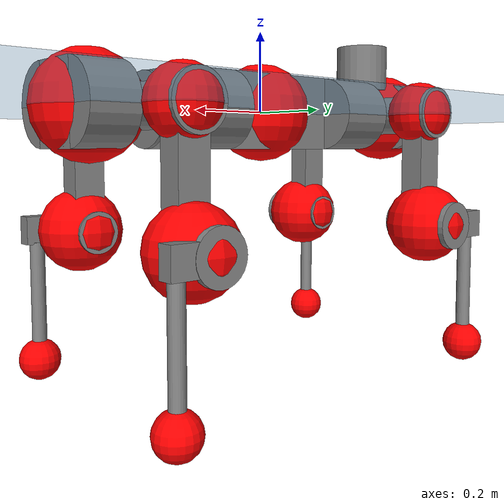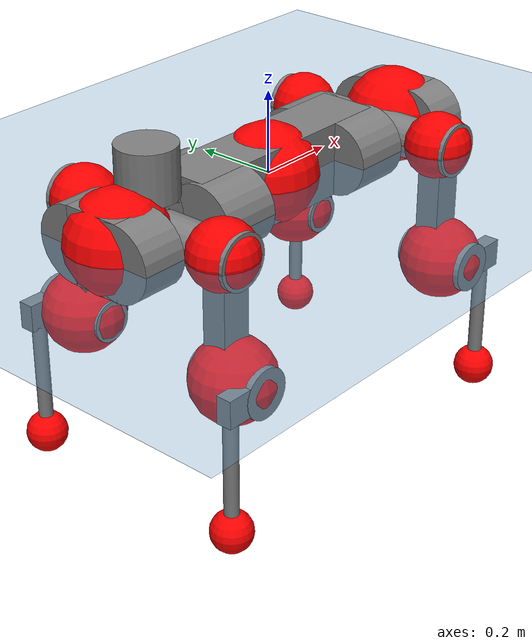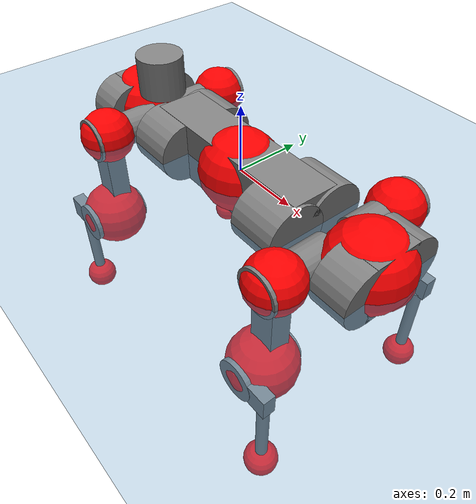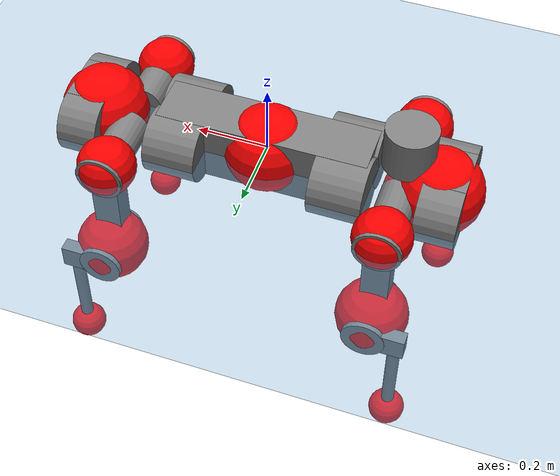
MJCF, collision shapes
<mujoco model="anymal_c">
  <compiler angle="radian" assetdir="assets" balanceinertia="true" inertiafromgeom="false"/>

  <option timestep="0.005" density="1.2" viscosity="2e-05"/>

  <size nkey="1"/>

  <visual>
    <quality shadowsize="8192"/>
    <map shadowclip="0.5"/>
  </visual>

  <default>
    <default class="/">
      <material specular="0" shininess="0.25"/>
      <geom contype="0" conaffinity="0" group="1" solref="-1000 -80"/>
      <site size="0.01 0.005 0.005" group="5"/>
      <general forcelimited="true" forcerange="-80 80" biastype="affine" gainprm="80" biasprm="0 -80 -2"/>
      <default class="anymal_c">
        <joint armature="0.01" damping="0.01" frictionloss="0.1"/>
        <default class="visual">
          <geom type="mesh" group="2"/>
          <default class="visual_zflip"/>
        </default>
        <default class="collision">
          <geom type="cylinder" group="3"/>
          <default class="foot">
            <geom size="0.03 0 0" type="sphere" condim="6" priority="1" friction="0.8 0.02 0.01" solimp="0.015 1 0.03"/>
          </default>
        </default>
      </default>
      <default class="reward_collision_sphere">
        <geom group="5" rgba="1 0 0 1"/>
      </default>
    </default>
  </default>

  <asset>
    <texture type="skybox" colorspace="auto" name="//unnamed_texture_0" builtin="gradient" rgb1="0.95 0.95 0.95" rgb2="0.95 0.95 0.95" width="100" height="600"/>
    <texture type="2d" colorspace="auto" name="texplane" builtin="checker" rgb1="0.345 0.575 0.748" rgb2="0.345 0.575 0.748" markrgb="1 1 1" width="512" height="512"/>
    <texture type="2d" colorspace="linear" name="base" file="base.png"/>
    <texture type="2d" colorspace="linear" name="top_shell" file="top_shell.png"/>
    <texture type="2d" colorspace="linear" name="bottom_shell" file="bottom_shell.png"/>
    <texture type="2d" colorspace="linear" name="remote" file="remote.png"/>
    <texture type="2d" colorspace="linear" name="hatch" file="hatch.png"/>
    <texture type="2d" colorspace="linear" name="handle" file="handle.png"/>
    <texture type="2d" colorspace="linear" name="face" file="face.png"/>
    <texture type="2d" colorspace="linear" name="battery" file="battery.png"/>
    <texture type="2d" colorspace="linear" name="lidar_cage" file="lidar_cage.png"/>
    <texture type="2d" colorspace="linear" name="depth_camera" file="depth_camera.png"/>
    <texture type="2d" colorspace="linear" name="wide_angle_camera" file="wide_angle_camera.png"/>
    <texture type="2d" colorspace="linear" name="lidar" file="lidar.png"/>
    <texture type="2d" colorspace="linear" name="drive" file="drive.png"/>
    <texture type="2d" colorspace="linear" name="hip_l" file="hip_l.png"/>
    <texture type="2d" colorspace="linear" name="shank_l" file="shank_l.png"/>
    <texture type="2d" colorspace="linear" name="foot" file="foot.png"/>
    <texture type="2d" colorspace="linear" name="thigh" file="thigh.png"/>
    <texture type="2d" colorspace="linear" name="shank_r" file="shank_r.png"/>
    <texture type="2d" colorspace="linear" name="hip_r" file="hip_r.png"/>
    <material name="MatPlane" class="/" texture="texplane" texuniform="true" texrepeat="2 2" specular="0.9" shininess="0.5"/>
    <material name="black_plastic" class="/" rgba="0.007 0.007 0.007 1"/>
    <material name="green" class="/" rgba="0.052 0.178 0.033 1"/>
    <material name="red" class="/" rgba="0.178 0.006 0.005 1"/>
    <material name="yellow" class="/" rgba="0.178 0.119 0.006 1"/>
    <material name="lwl" class="/" rgba="0.8 0.8 0.8 1"/>
    <material name="base" class="/" texture="base"/>
    <material name="top_shell" class="/" texture="top_shell"/>
    <material name="bottom_shell" class="/" texture="bottom_shell"/>
    <material name="hip_l" class="/" texture="hip_l"/>
    <material name="thigh" class="/" texture="thigh"/>
    <material name="shank_l" class="/" texture="shank_l"/>
    <material name="foot" class="/" texture="foot"/>
    <material name="hip_r" class="/" texture="hip_r"/>
    <material name="shank" class="/" texture="shank_r"/>
    <material name="hatch" class="/" texture="hatch"/>
    <material name="remote" class="/" texture="remote"/>
    <material name="handle" class="/" texture="handle"/>
    <material name="face" class="/" texture="face"/>
    <material name="depth_camera" class="/" texture="depth_camera"/>
    <material name="wide_angle_camera" class="/" texture="wide_angle_camera"/>
    <material name="battery" class="/" texture="battery"/>
    <material name="lidar_cage" class="/" texture="lidar_cage"/>
    <material name="lidar" class="/" texture="lidar"/>
    <material name="drive" class="/" texture="drive"/>
    <mesh name="base_0" class="/" file="base_0.obj"/>
    <mesh name="base_1" class="/" file="base_1.obj"/>
    <mesh name="base_2" class="/" file="base_2.obj"/>
    <mesh name="base_3" class="/" file="base_3.obj"/>
    <mesh name="base_4" class="/" file="base_4.obj"/>
    <mesh name="base_5" class="/" file="base_5.obj"/>
    <mesh name="top_shell" class="/" file="top_shell.obj"/>
    <mesh name="bottom_shell" class="/" file="bottom_shell.obj"/>
    <mesh name="remote" class="/" file="remote.obj"/>
    <mesh name="handle" class="/" file="handle.obj"/>
    <mesh name="face" class="/" file="face.obj"/>
    <mesh name="wide_angle_camera" class="/" file="wide_angle_camera.obj"/>
    <mesh name="depth_camera" class="/" file="depth_camera.obj"/>
    <mesh name="battery" class="/" file="battery.obj"/>
    <mesh name="lidar_cage" class="/" file="lidar_cage.obj"/>
    <mesh name="lidar" class="/" file="lidar.obj"/>
    <mesh name="drive" class="/" file="drive.obj"/>
    <mesh name="hip_l" class="/" file="hip_l.obj"/>
    <mesh name="thigh" class="/" file="thigh.obj"/>
    <mesh name="shank_l" class="/" file="shank_l.obj"/>
    <mesh name="foot" class="/" file="foot.obj"/>
    <mesh name="hip_r" class="/" file="hip_r.obj"/>
    <mesh name="hatch" class="/" file="hatch.obj"/>
    <mesh name="shank_r" class="/" file="shank_r.obj"/>
  </asset>

  <worldbody>
    <geom name="floor" class="/" size="100 100 0.125" type="plane" group="0" material="MatPlane"/>
    <light name="toplight_shadow" class="/" pos="0 0 5" dir="0.0990148 0.0990148 -0.990148" type="directional" ambient="0.04 0.04 0.04" diffuse="0.55 0.55 0.55" specular="0.12 0.12 0.12"/>
    <light name="toplight_fill" class="/" pos="0 0 5" dir="0.0990148 0.0990148 -0.990148" type="directional" castshadow="false" ambient="0.04 0.04 0.04" diffuse="0.3 0.3 0.3" specular="0.08 0.08 0.08"/>
    <body name="trunk" childclass="anymal_c" pos="-0.00127742 0.000478966 0.000728228" quat="1 -1.08209e-06 -6.4606e-05 -4.89702e-05">
      <inertial pos="0.000834394 -0.000465255 0.0496876" quat="0.497249 0.501623 0.500013 0.501102" mass="19.8758" diaginertia="0.854634 0.497447 0.243287"/>
      <joint name="//unnamed_joint_0" type="free" armature="0" damping="0" frictionloss="0"/>
      <geom name="//unnamed_geom_1" class="visual" material="green" mesh="base_0"/>
      <geom name="//unnamed_geom_2" class="visual" material="yellow" mesh="base_1"/>
      <geom name="//unnamed_geom_3" class="visual" material="red" mesh="base_2"/>
      <geom name="//unnamed_geom_4" class="visual" material="black_plastic" mesh="base_3"/>
      <geom name="//unnamed_geom_5" class="visual" material="lwl" mesh="base_4"/>
      <geom name="//unnamed_geom_6" class="visual" material="base" mesh="base_5"/>
      <geom name="trunk_1" class="collision" size="0.29326 0.070787 0.0910119" type="box"/>
      <geom name="trunk_2" class="collision" size="0.0910119 0.0733151" pos="0.23021 0.0668405 0" quat="0.707107 0 0.707107 0"/>
      <geom name="trunk_3" class="collision" size="0.0910119 0.0733151" pos="-0.23021 0.0668405 0" quat="0.707107 0 0.707107 0"/>
      <geom name="trunk_4" class="collision" size="0.0910119 0.0733151" pos="0.23021 -0.0668405 0" quat="0.707107 0 0.707107 0"/>
      <geom name="trunk_5" class="collision" size="0.0910119 0.0733151" pos="-0.23021 -0.0668405 0" quat="0.707107 0 0.707107 0"/>
      <geom name="//unnamed_geom_12" class="visual" material="top_shell" mesh="top_shell"/>
      <geom name="//unnamed_geom_13" class="visual" material="bottom_shell" mesh="bottom_shell"/>
      <geom name="//unnamed_geom_14" class="visual" material="remote" mesh="remote"/>
      <geom name="//unnamed_geom_15" class="visual" material="handle" mesh="handle"/>
      <geom name="//unnamed_geom_16" class="visual" pos="0.438722 0 0" quat="1 0 0 0" material="face" mesh="face"/>
      <geom name="trunk_6" class="collision" size="0.0556184 0.070787 0.0910119" pos="0.496936 0 0" type="box"/>
      <geom name="//unnamed_geom_18" class="collision" size="0.0910119 0.0556184" pos="0.496936 0.0668405 0" quat="0.707107 0 0.707107 0"/>
      <geom name="//unnamed_geom_19" class="collision" size="0.0910119 0.0556184" pos="0.496936 -0.0668405 0" quat="0.707107 0 0.707107 0"/>
      <geom name="//unnamed_geom_20" class="visual" pos="0.488626 0 -0.0295076" quat="0.965926 0 0.258819 0" material="depth_camera" mesh="depth_camera"/>
      <geom name="//unnamed_geom_21" class="visual" pos="0.542978 0 0.0152758" material="wide_angle_camera" mesh="wide_angle_camera"/>
      <geom name="//unnamed_geom_22" class="visual_zflip" pos="-0.438722 0 0" quat="0 0 0 1" material="face" mesh="face"/>
      <geom name="trunk_7" class="collision" size="0.0556184 0.070787 0.0910119" pos="-0.496936 0 0" quat="0 0 0 1" type="box"/>
      <geom name="//unnamed_geom_24" class="collision" size="0.0910119 0.0556184" pos="-0.496936 -0.0668405 0" quat="0 -0.707107 0 0.707107"/>
      <geom name="//unnamed_geom_25" class="collision" size="0.0910119 0.0556184" pos="-0.496936 0.0668405 0" quat="0 -0.707107 0 0.707107"/>
      <geom name="//unnamed_geom_26" class="visual" pos="-0.488626 0 -0.0295076" quat="0 -0.258819 0 0.965926" material="depth_camera" mesh="depth_camera"/>
      <geom name="//unnamed_geom_27" class="visual_zflip" pos="-0.542978 0 0.0152758" quat="0 0 0 1" material="wide_angle_camera" mesh="wide_angle_camera"/>
      <geom name="//unnamed_geom_28" class="visual" material="battery" mesh="battery"/>
      <geom name="//unnamed_geom_29" class="visual" pos="0 0.0716482 0.0299323" quat="0.683013 -0.183013 0.183013 0.683013" material="depth_camera" mesh="depth_camera"/>
      <geom name="//unnamed_geom_30" class="visual" pos="0 -0.0716482 0.0299323" quat="0.683013 0.183013 0.183013 -0.683013" material="depth_camera" mesh="depth_camera"/>
      <geom name="//unnamed_geom_31" class="visual" pos="-0.385271 0 0.0750015" quat="1 0 0 0" material="lidar_cage" mesh="lidar_cage"/>
      <geom name="trunk_8" class="collision" size="0.070787 0.0606746" pos="-0.385271 0 0.136227"/>
      <geom name="//unnamed_geom_33" class="visual" pos="-0.385271 -4.06912e-05 0.145105" quat="0.707107 0 0 -0.707107" material="lidar" mesh="lidar"/>
      <geom name="//unnamed_geom_34" class="visual" pos="0.317425 0.0993291 -1.13099e-09" quat="0.258819 0.965926 0 0" material="drive" mesh="drive"/>
      <geom name="//unnamed_geom_35" class="visual" pos="0.317425 -0.0993291 1.13099e-09" quat="0.258819 -0.965926 0 0" material="drive" mesh="drive"/>
      <geom name="//unnamed_geom_36" class="visual" pos="-0.317425 0.0993291 1.13099e-09" quat="0 0 0.965926 -0.258819" material="drive" mesh="drive"/>
      <geom name="//unnamed_geom_37" class="visual" pos="-0.317425 -0.0993291 -1.13099e-09" quat="0 0 -0.965926 -0.258819" material="drive" mesh="drive"/>
      <geom name="//unnamed_geom_38" class="visual" pos="0.122779 0 0.0744913" quat="1 0 0 0" material="hatch" mesh="hatch"/>
      <geom name="//unnamed_geom_39" class="reward_collision_sphere" size="0.121349"/>
      <geom name="//unnamed_geom_40" class="reward_collision_sphere" size="0.121349" pos="0.476297 0 0"/>
      <geom name="//unnamed_geom_41" class="reward_collision_sphere" size="0.121349" pos="-0.476297 0 0"/>
      <site name="imu" pos="0.261965 0.004994 0.0473116" size="0.0101124"/>
      <camera name="track" pos="0 -1.90973 0" quat="0.707107 0.707107 0 0" mode="trackcom"/>
      <camera name="ego_camera" pos="0.476297 0 -0.0408171" quat="-0.5 -0.5 0.5 0.5"/>
      <body name="LF_HIP" pos="0.318668 0.100512 -0.00142577" quat="0.259123 0.965844 -0.000308365 0.000523978">
        <inertial pos="0.0584742 -0.0133664 -0.00739755" quat="-0.128315 0.710228 -0.136191 0.678648" mass="2.88011" diaginertia="0.00778635 0.00388243 0.0036239"/>
        <joint name="LF_HAA" pos="0 0 0" axis="0.999993 0.0034764 0.00126367" range="-0.71617 0.477723" armature="0.0100635" damping="0.0137732" frictionloss="0.0968824"/>
        <geom name="//unnamed_geom_42" class="visual" pos="0 -6.65312e-05 1.09277e-05" quat="0.258819 -0.965926 0 0" material="hip_l" mesh="hip_l"/>
        <geom name="//unnamed_geom_43" class="visual" pos="0.0634004 -0.0754826 -0.0440649" quat="0.183013 -0.683013 0.683013 0.183013" material="drive" mesh="drive"/>
        <geom name="//unnamed_geom_44" class="collision" size="0.0505621 0.070787" pos="0.0634004 -0.01142 -0.00704606" quat="-0.353553 -0.612372 0.612372 -0.353553"/>
        <body name="LF_THIGH" pos="0.0632162 -0.0694143 -0.0429094" quat="0.18307 -0.683011 0.682988 0.183055">
          <inertial pos="0.0341488 -0.000157756 -0.249876" quat="0.993107 -0.00515375 -0.0811051 0.0844581" mass="3.17799" diaginertia="0.0402135 0.0237939 0.00468153"/>
          <joint name="LF_HFE" pos="0 0 0" axis="0.999993 -0.00227686 -0.00284039" stiffness="0.00908946" range="-3.14963 3.13478" armature="0.00998956" damping="0.000686505" frictionloss="0.0962579"/>
          <geom name="//unnamed_geom_45" class="visual" pos="0.0020607 3.24719e-06 0" quat="0.707107 0 0 -0.707107" material="thigh" mesh="thigh"/>
          <geom name="//unnamed_geom_46" class="collision" size="0.0657308 0.0404497" pos="0.0423375 0 0" quat="0.5 0.5 -0.5 -0.5"/>
          <geom name="//unnamed_geom_47" class="collision" size="0.0379216 0.0303373 0.142903" pos="0.0317531 0 -0.144201" quat="0.707107 0 0 -0.707107" type="box"/>
          <geom name="//unnamed_geom_48" class="visual" pos="0.106161 0 -0.290822" quat="1 0 0 0" material="drive" mesh="drive"/>
          <geom name="//unnamed_geom_49" class="collision" size="0.0505621 0.070787" pos="0.0320706 0 -0.290822" quat="0.707107 0 0.707107 0"/>
          <geom name="//unnamed_geom_50" class="reward_collision_sphere" size="0.0808994" pos="0.0264609 0 0"/>
          <body name="LF_SHANK" pos="0.10656 -7.06056e-05 -0.291513" quat="1 0.000321007 -0.000255001 1.58486e-05">
            <inertial pos="0.00490527 -0.0594175 -0.0821233" quat="0.993104 -0.113953 -0.00283219 -0.0274145" mass="0.608367" diaginertia="0.0135765 0.00725015 0.00124943"/>
            <joint name="LF_KFE" pos="0 0 0" axis="0.999998 -0.00190939 -6.67305e-05" range="-3.14147 3.13161" armature="0.0106569" damping="0.00958314" frictionloss="0.0986515"/>
            <geom name="//unnamed_geom_51" class="visual" pos="0.00067195 0.00358287 0" quat="0.707107 0 0 -0.707107" material="shank_l" mesh="shank_l"/>
            <geom name="LF_kfe_act" class="collision" size="0.0606746 0.0202249" pos="0.0211687 0 0" quat="0.5 0.5 -0.5 -0.5"/>
            <geom name="//unnamed_geom_53" class="collision" size="0.0581455 0.0341294 0.0192136" pos="0.0211687 -0.0549037 0" quat="0.5 0.5 -0.5 -0.5" type="box"/>
            <geom name="//unnamed_geom_54" class="visual" pos="0.0138124 -0.0828256 -0.344874" quat="0.382683 0 0 -0.92388" material="foot" mesh="foot"/>
            <geom name="LF_calf" class="collision" size="0.0176968 0.14284" pos="0.0138126 -0.0839803 -0.172437" quat="0.707107 0 0 -0.707107"/>
            <geom name="LF_foot" class="foot" size="0.0289279" pos="0.0138126 -0.0839803 -0.321914" quat="0.707107 0 0 -0.707107"/>
            <geom name="//unnamed_geom_57" class="reward_collision_sphere" size="0.101124" pos="-0.0529219 0 0"/>
            <geom name="//unnamed_geom_58" class="reward_collision_sphere" size="0.0505621" pos="0.0138126 -0.0839803 -0.321914"/>
            <site name="LF_foot" class="foot" pos="0.0138126 -0.0839803 -0.321914" quat="0.707107 0 0 -0.707107" size="0.0101124"/>
          </body>
        </body>
      </body>
      <body name="RF_HIP" pos="0.317949 -0.0992272 7.7362e-05" quat="0.258736 -0.965948 -2.26383e-05 0.000328678">
        <inertial pos="0.0602174 0.0146678 -0.00851425" quat="0.136202 0.679601 0.12867 0.70925" mass="2.92558" diaginertia="0.0076826 0.00386322 0.00365156"/>
        <joint name="RF_HAA" pos="0 0 0" axis="0.999999 -0.000294109 0.00114633" range="-0.511573 0.718877" armature="0.00937811" damping="0.0100112" frictionloss="0.107952"/>
        <geom name="//unnamed_geom_59" class="visual" pos="0 6.65307e-05 1.09277e-05" quat="0.258819 0.965926 0 0" material="hip_r" mesh="hip_r"/>
        <geom name="//unnamed_geom_60" class="visual" pos="0.0634004 0.0754826 -0.0440649" quat="0.183013 0.683013 0.683013 -0.183013" material="drive" mesh="drive"/>
        <geom name="//unnamed_geom_61" class="collision" size="0.0505621 0.070787" pos="0.0634004 0.01142 -0.00704606" quat="-0.353553 0.612372 0.612372 0.353553"/>
        <body name="RF_THIGH" pos="0.0642651 0.0691725 -0.0428775" quat="0.182675 0.683201 0.682878 -0.18315">
          <inertial pos="0.0330972 -0.00158315 -0.250418" quat="0.992888 -0.00656893 -0.0787613 0.0890321" mass="3.13317" diaginertia="0.0405885 0.0241675 0.00465712"/>
          <joint name="RF_HFE" pos="0 0 0" axis="0.999989 -0.000130905 0.0046087" stiffness="0.00455017" range="-3.13691 3.14977" armature="0.0101118" damping="0.00939606" frictionloss="0.0968158"/>
          <geom name="//unnamed_geom_62" class="visual" pos="0.0020607 3.24719e-06 0" quat="0.707107 0 0 -0.707107" material="thigh" mesh="thigh"/>
          <geom name="//unnamed_geom_63" class="collision" size="0.0657308 0.0404497" pos="0.0423375 0 0" quat="0.5 0.5 0.5 0.5"/>
          <geom name="//unnamed_geom_64" class="collision" size="0.0379216 0.0303373 0.142903" pos="0.0317531 0 -0.144201" quat="0.707107 0 0 0.707107" type="box"/>
          <geom name="//unnamed_geom_65" class="visual" pos="0.106161 0 -0.290822" quat="1 0 0 0" material="drive" mesh="drive"/>
          <geom name="//unnamed_geom_66" class="collision" size="0.0505621 0.070787" pos="0.0320706 0 -0.290822" quat="0.707107 0 0.707107 0"/>
          <geom name="//unnamed_geom_67" class="reward_collision_sphere" size="0.0808994" pos="0.0264609 0 0"/>
          <body name="RF_SHANK" pos="0.105143 0.000137364 -0.29104" quat="1 1.78906e-05 3.7821e-05 1.42599e-05">
            <inertial pos="0.00499019 0.0586102 -0.0821455" quat="0.9931 0.114199 0.00021347 0.0266596" mass="0.610624" diaginertia="0.0136207 0.00738995 0.00123741"/>
            <joint name="RF_KFE" pos="0 0 0" axis="0.999986 0.00136849 0.00512557" range="-3.14125 3.13031" armature="0.0100552" damping="0.00423999" frictionloss="0.101789"/>
            <geom name="//unnamed_geom_68" class="visual" pos="0.000671947 -0.00358287 0" quat="0.707107 0 0 0.707107" material="shank" mesh="shank_r"/>
            <geom name="RF_kfe_act" class="collision" size="0.0606746 0.0202249" pos="0.0211687 0 0" quat="0.5 0.5 0.5 0.5"/>
            <geom name="//unnamed_geom_70" class="collision" size="0.0581455 0.0341294 0.0192136" pos="0.0211687 0.0549037 0" quat="0.5 0.5 0.5 0.5" type="box"/>
            <geom name="//unnamed_geom_71" class="visual" pos="0.0138128 0.0828256 -0.344874" quat="0.382683 0 0 0.92388" material="foot" mesh="foot"/>
            <geom name="RF_calf" class="collision" size="0.0176968 0.14284" pos="0.0138126 0.0839803 -0.172437" quat="0.707107 0 0 0.707107"/>
            <geom name="RF_foot" class="foot" size="0.030018" pos="0.0138126 0.0839803 -0.321914" quat="0.707107 0 0 0.707107"/>
            <geom name="//unnamed_geom_74" class="reward_collision_sphere" size="0.101124" pos="-0.0529219 0 0"/>
            <geom name="//unnamed_geom_75" class="reward_collision_sphere" size="0.0505621" pos="0.0138126 0.0839803 -0.321914"/>
            <site name="RF_foot" class="foot" pos="0.0138126 0.0839803 -0.321914" quat="0.707107 0 0 0.707107" size="0.0101124"/>
          </body>
        </body>
      </body>
      <body name="LH_HIP" pos="-0.317381 0.0995297 -0.000249762" quat="-0.00065655 -0.000698105 0.966002 -0.258532">
        <inertial pos="0.0614456 0.0141122 -0.00834237" quat="0.135273 0.678862 0.128041 0.710249" mass="2.87596" diaginertia="0.00776155 0.00387651 0.0036231"/>
        <joint name="LH_HAA" pos="0 0 0" axis="0.999999 -0.00072776 0.0010813" range="-0.502934 0.732708" armature="0.0100328" damping="0.0102063" frictionloss="0.0976572"/>
        <geom name="//unnamed_geom_76" class="visual" pos="0 6.65307e-05 1.09277e-05" quat="-0.258819 -0.965926 0 0" material="hip_r" mesh="hip_r"/>
        <geom name="//unnamed_geom_77" class="visual" pos="0.0634004 0.0754826 -0.0440649" quat="0.183013 0.683013 0.683013 -0.183013" material="drive" mesh="drive"/>
        <geom name="//unnamed_geom_78" class="collision" size="0.0505621 0.070787" pos="0.0634004 0.01142 -0.00704606" quat="-0.353553 0.612372 0.612372 0.353553"/>
        <body name="LH_THIGH" pos="0.0614929 0.0682536 -0.0434774" quat="0.18293 0.683131 0.682987 -0.182749">
          <inertial pos="0.03273 -0.000571459 -0.25105" quat="0.992594 -0.00733116 -0.0803852 0.090786" mass="3.16211" diaginertia="0.0401463 0.02374 0.00460673"/>
          <joint name="LH_HFE" pos="0 0 0" axis="1 -0.00011815 0.000392772" range="-3.15236 3.13877" armature="0.0103921" damping="0.00148353" frictionloss="0.103818"/>
          <geom name="//unnamed_geom_79" class="visual" pos="0.0020607 3.24719e-06 0" quat="0.707107 0 0 -0.707107" material="thigh" mesh="thigh"/>
          <geom name="//unnamed_geom_80" class="collision" size="0.0657308 0.0404497" pos="0.0423375 0 0" quat="0.5 0.5 -0.5 -0.5"/>
          <geom name="//unnamed_geom_81" class="collision" size="0.0379216 0.0303373 0.142903" pos="0.0317531 0 -0.144201" quat="0.707107 0 0 -0.707107" type="box"/>
          <geom name="//unnamed_geom_82" class="visual" pos="0.106161 0 -0.290822" quat="1 0 0 0" material="drive" mesh="drive"/>
          <geom name="//unnamed_geom_83" class="collision" size="0.0505621 0.070787" pos="0.0320706 0 -0.290822" quat="0.707107 0 0.707107 0"/>
          <geom name="//unnamed_geom_84" class="reward_collision_sphere" size="0.0808994" pos="0.0264609 0 0"/>
          <body name="LH_SHANK" pos="0.105384 -9.89325e-05 -0.291681" quat="1 -2.39274e-06 5.60125e-07 1.51384e-06">
            <inertial pos="0.00573476 0.0584691 -0.083216" quat="0.993017 0.115209 -0.00106746 0.0253676" mass="0.610723" diaginertia="0.0135166 0.00732346 0.00124532"/>
            <joint name="LH_KFE" pos="0 0 0" axis="0.999999 0.00132833 0.000718866" range="-3.14319 3.14117" armature="0.0104104" damping="0.00172542" frictionloss="0.102397"/>
            <geom name="//unnamed_geom_85" class="visual" pos="0.000671947 -0.00358287 0" quat="-0.707107 0 0 -0.707107" material="shank" mesh="shank_r"/>
            <geom name="LH_kfe_act" class="collision" size="0.0606746 0.0202249" pos="0.0211687 0 0" quat="0.5 0.5 -0.5 -0.5"/>
            <geom name="//unnamed_geom_87" class="collision" size="0.0581455 0.0341294 0.0192136" pos="0.0211687 0.0549037 0" quat="0.5 0.5 -0.5 -0.5" type="box"/>
            <geom name="//unnamed_geom_88" class="visual" pos="0.0138128 0.0828256 -0.344874" quat="-0.382683 0 0 -0.92388" material="foot" mesh="foot"/>
            <geom name="LH_calf" class="collision" size="0.0176968 0.14284" pos="0.0138126 0.0839803 -0.172437" quat="0.707107 0 0 -0.707107"/>
            <geom name="LH_foot" class="foot" size="0.0308112" pos="0.0138126 0.0839803 -0.321914" quat="0.707107 0 0 -0.707107"/>
            <geom name="//unnamed_geom_91" class="reward_collision_sphere" size="0.101124" pos="-0.0529219 0 0"/>
            <geom name="//unnamed_geom_92" class="reward_collision_sphere" size="0.0505621" pos="0.0138126 0.0839803 -0.321914"/>
            <site name="LH_foot" class="foot" pos="0.0138126 0.0839803 -0.321914" quat="0.707107 0 0 -0.707107" size="0.0101124"/>
          </body>
        </body>
      </body>
      <body name="RH_HIP" pos="-0.317136 -0.100741 0.00052329" quat="0.000168659 -2.1564e-05 -0.965955 -0.258709">
        <inertial pos="0.0599127 -0.0146915 -0.00853918" quat="-0.129425 0.71238 -0.135784 0.676259" mass="2.87727" diaginertia="0.00770407 0.00387283 0.0036811"/>
        <joint name="RH_HAA" pos="0 0 0" axis="0.999999 0.00103635 -0.000844633" range="-0.712952 0.494604" armature="0.0107481" damping="0.0194677" frictionloss="0.0983008"/>
        <geom name="//unnamed_geom_93" class="visual" pos="0 -6.65312e-05 1.09277e-05" quat="-0.258819 0.965926 0 0" material="hip_l" mesh="hip_l"/>
        <geom name="//unnamed_geom_94" class="visual" pos="0.0634004 -0.0754826 -0.0440649" quat="-0.183013 0.683013 -0.683013 -0.183013" material="drive" mesh="drive"/>
        <geom name="//unnamed_geom_95" class="collision" size="0.0505621 0.070787" pos="0.0634004 -0.01142 -0.00704606" quat="0.353553 0.612372 -0.612372 0.353553"/>
        <body name="RH_THIGH" pos="0.0635001 -0.0694534 -0.0434739" quat="-0.18285 0.682848 -0.683241 -0.182936">
          <inertial pos="0.0327193 0.000956115 -0.250719" quat="0.993247 -0.00518982 -0.0799479 0.0839188" mass="3.23951" diaginertia="0.0409246 0.0238574 0.00461694"/>
          <joint name="RH_HFE" pos="0 0 0" axis="0.999997 -0.00242254 0.00092448" range="-3.15796 3.12859" armature="0.00960747" damping="0.00628986" frictionloss="0.10094"/>
          <geom name="//unnamed_geom_96" class="visual" pos="0.0020607 3.24719e-06 0" quat="0.707107 0 0 -0.707107" material="thigh" mesh="thigh"/>
          <geom name="//unnamed_geom_97" class="collision" size="0.0657308 0.0404497" pos="0.0423375 0 0" quat="0.5 0.5 0.5 0.5"/>
          <geom name="//unnamed_geom_98" class="collision" size="0.0379216 0.0303373 0.142903" pos="0.0317531 0 -0.144201" quat="0.707107 0 0 0.707107" type="box"/>
          <geom name="//unnamed_geom_99" class="visual" pos="0.106161 0 -0.290822" quat="1 0 0 0" material="drive" mesh="drive"/>
          <geom name="//unnamed_geom_100" class="collision" size="0.0505621 0.070787" pos="0.0320706 0 -0.290822" quat="0.707107 0 0.707107 0"/>
          <geom name="//unnamed_geom_101" class="reward_collision_sphere" size="0.0808994" pos="0.0264609 0 0"/>
          <body name="RH_SHANK" pos="0.103915 3.7317e-06 -0.290454" quat="1 -8.5781e-05 2.3283e-05 -4.41321e-05">
            <inertial pos="0.00759801 -0.0583957 -0.0832877" quat="0.993201 -0.113851 0.0016755 -0.0242292" mass="0.609627" diaginertia="0.0131051 0.00723498 0.00120689"/>
            <joint name="RH_KFE" pos="0 0 0" axis="0.999989 0.00460852 0.00119163" range="-3.12763 3.17041" armature="0.0101345" damping="0.0114311" frictionloss="0.100894"/>
            <geom name="//unnamed_geom_102" class="visual" pos="0.00067195 0.00358287 0" quat="0.707107 0 0 -0.707107" material="shank_l" mesh="shank_l"/>
            <geom name="RH_kfe_act" class="collision" size="0.0606746 0.0202249" pos="0.0211687 0 0" quat="0.5 0.5 0.5 0.5"/>
            <geom name="//unnamed_geom_104" class="collision" size="0.0581455 0.0341294 0.0192136" pos="0.0211687 -0.0549037 0" quat="0.5 0.5 0.5 0.5" type="box"/>
            <geom name="//unnamed_geom_105" class="visual" pos="0.0138124 -0.0828256 -0.344874" quat="0.382683 0 0 -0.92388" material="foot" mesh="foot"/>
            <geom name="RH_calf" class="collision" size="0.0176968 0.14284" pos="0.0138126 -0.0839803 -0.172437" quat="0.707107 0 0 0.707107"/>
            <geom name="RH_foot" class="foot" size="0.0283386" pos="0.0138126 -0.0839803 -0.321914" quat="0.707107 0 0 0.707107"/>
            <geom name="//unnamed_geom_108" class="reward_collision_sphere" size="0.101124" pos="-0.0529219 0 0"/>
            <geom name="//unnamed_geom_109" class="reward_collision_sphere" size="0.0505621" pos="0.0138126 -0.0839803 -0.321914"/>
            <site name="RH_foot" class="foot" pos="0.0138126 -0.0839803 -0.321914" quat="0.707107 0 0 0.707107" size="0.0101124"/>
          </body>
        </body>
      </body>
    </body>
  </worldbody>

  <contact>
    <pair class="/" geom1="floor" geom2="LF_foot" name="//unnamed_contact_0"/>
    <pair class="/" geom1="floor" geom2="RF_foot" name="//unnamed_contact_1"/>
    <pair class="/" geom1="floor" geom2="LH_foot" name="//unnamed_contact_2"/>
    <pair class="/" geom1="floor" geom2="RH_foot" name="//unnamed_contact_3"/>
  </contact>

  <actuator>
    <general name="LF_HAA" class="/" joint="LF_HAA" forcerange="-81.7141 81.7141" gainprm="81.8021" biasprm="0 -81.8021 -1.92516"/>
    <general name="LF_HFE" class="/" joint="LF_HFE" forcerange="-83.804 83.804" gainprm="81.8021" biasprm="0 -81.8021 -1.92516"/>
    <general name="LF_KFE" class="/" joint="LF_KFE" forcerange="-80.5992 80.5992" gainprm="81.8021" biasprm="0 -81.8021 -1.92516"/>
    <general name="RF_HAA" class="/" joint="RF_HAA" forcerange="-86.8345 86.8345" gainprm="81.8021" biasprm="0 -81.8021 -1.92516"/>
    <general name="RF_HFE" class="/" joint="RF_HFE" forcerange="-82.3311 82.3311" gainprm="81.8021" biasprm="0 -81.8021 -1.92516"/>
    <general name="RF_KFE" class="/" joint="RF_KFE" forcerange="-81.9619 81.9619" gainprm="81.8021" biasprm="0 -81.8021 -1.92516"/>
    <general name="LH_HAA" class="/" joint="LH_HAA" forcerange="-81.5067 81.5067" gainprm="81.8021" biasprm="0 -81.8021 -1.92516"/>
    <general name="LH_HFE" class="/" joint="LH_HFE" forcerange="-81.1293 81.1293" gainprm="81.8021" biasprm="0 -81.8021 -1.92516"/>
    <general name="LH_KFE" class="/" joint="LH_KFE" forcerange="-81.9125 81.9125" gainprm="81.8021" biasprm="0 -81.8021 -1.92516"/>
    <general name="RH_HAA" class="/" joint="RH_HAA" forcerange="-83.059 83.059" gainprm="81.8021" biasprm="0 -81.8021 -1.92516"/>
    <general name="RH_HFE" class="/" joint="RH_HFE" forcerange="-81.6084 81.6084" gainprm="81.8021" biasprm="0 -81.8021 -1.92516"/>
    <general name="RH_KFE" class="/" joint="RH_KFE" forcerange="-83.9135 83.9135" gainprm="81.8021" biasprm="0 -81.8021 -1.92516"/>
  </actuator>

  <sensor>
    <gyro site="imu" name="imu_angular_velocity"/>
    <velocimeter site="imu" name="imu_linear_velocity"/>
    <framelinvel objtype="site" objname="LF_foot" name="LF_foot_global_linear_velocity"/>
    <framelinvel objtype="site" objname="RF_foot" name="RF_foot_global_linear_velocity"/>
    <framelinvel objtype="site" objname="LH_foot" name="LH_foot_global_linear_velocity"/>
    <framelinvel objtype="site" objname="RH_foot" name="RH_foot_global_linear_velocity"/>
  </sensor>

  <keyframe>
    <key name="home" qpos="0 0 0.55 1 0 0 0 0 0.4 -0.8 0 -0.4 0.8 0 -0.4 0.8 0 0.4 -0.8"/>
  </keyframe>
</mujoco>
